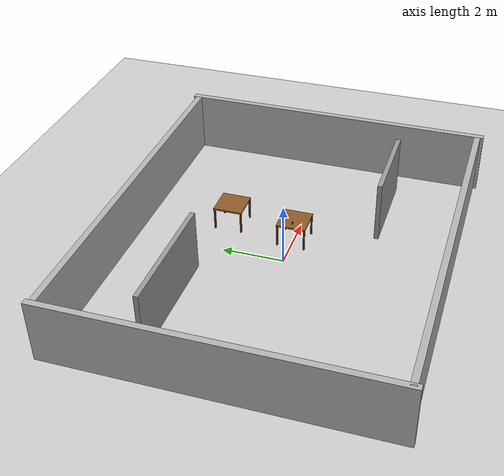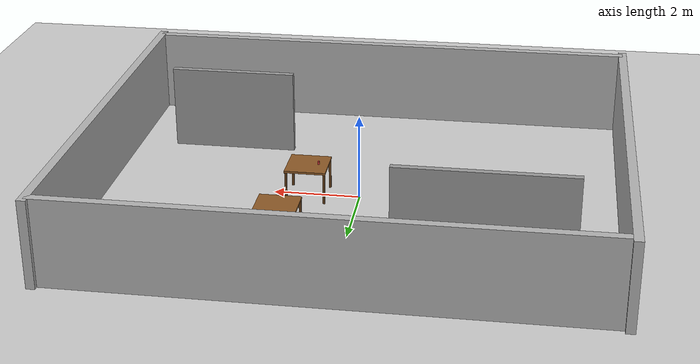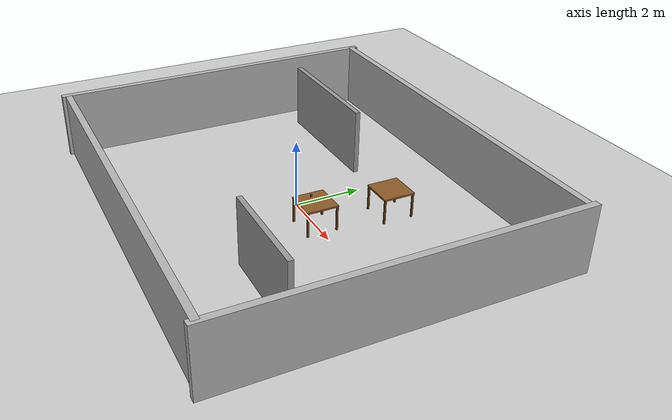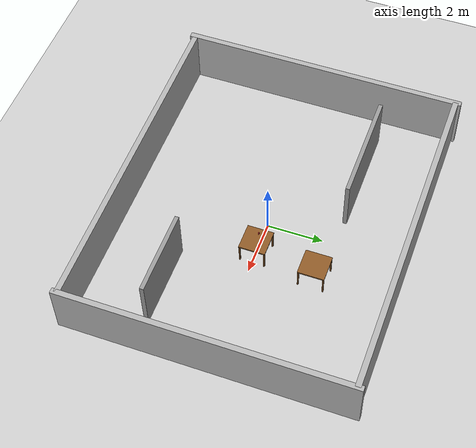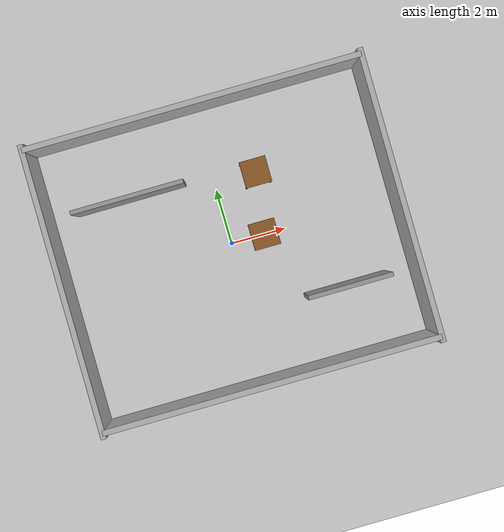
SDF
<?xml version="1.0"?>
<!-- MTC Test World: Simple room with custom tables and pickable object -->
<sdf version='1.7'>
  <world name='mtc_test'>
    <physics type='ode'>
      <max_step_size>0.02</max_step_size>
      <real_time_factor>1.0</real_time_factor>
      <real_time_update_rate>50</real_time_update_rate>
    </physics>
    <plugin name='ignition::gazebo::systems::Physics'
      filename='libignition-gazebo-physics-system.so' />
    <plugin name='ignition::gazebo::systems::UserCommands'
      filename='libignition-gazebo-user-commands-system.so' />
    <plugin name='ignition::gazebo::systems::SceneBroadcaster'
      filename='libignition-gazebo-scene-broadcaster-system.so' />
    <plugin name="ignition::gazebo::systems::Sensors"
      filename="libignition-gazebo-sensors-system.so">
      <render_engine>ogre2</render_engine>
    </plugin>
    <plugin name="ignition::gazebo::systems::Imu" filename="libignition-gazebo-imu-system.so" />

    <scene>
      <ambient>1 1 1 1</ambient>
      <background>0.3 0.7 0.9 1</background>
      <shadows>1</shadows>
      <grid>false</grid>
      <sky>
        <clouds>
          <speed>12</speed>
        </clouds>
      </sky>
    </scene>

    <gravity>0 0 -9.8</gravity>
    <magnetic_field>6e-06 2.3e-05 -4.2e-05</magnetic_field>
    <atmosphere type='adiabatic' />

    <!-- Sun from Fuel -->
    <include>
      <uri>https://fuel.gazebosim.org/1.0/OpenRobotics/models/Sun</uri>
    </include>

    <!-- Ground plane from Fuel -->
    <include>
      <uri>https://fuel.gazebosim.org/1.0/OpenRobotics/models/Ground Plane</uri>
    </include>

    <!-- Pick table: tabletop center z=0.75 (top at z=0.775), legs 0.725m tall (center z=0.3625) -->
    <model name="pick_table">
      <static>true</static>
      <pose>1.2 0 0 0 0 0</pose>
      <link name="tabletop">
        <pose>0 0 0.75 0 0 0</pose>
        <collision name="tabletop_collision">
          <geometry><box><size>0.95 0.95 0.05</size></box></geometry>
        </collision>
        <visual name="tabletop_visual">
          <geometry><box><size>0.95 0.95 0.05</size></box></geometry>
          <material>
            <ambient>0.55 0.35 0.15 1</ambient>
            <diffuse>0.55 0.35 0.15 1</diffuse>
          </material>
        </visual>
      </link>
      <link name="leg_fl">
        <pose>0.44 0.44 0.3625 0 0 0</pose>
        <collision name="c"><geometry><box><size>0.05 0.05 0.725</size></box></geometry></collision>
        <visual name="v"><geometry><box><size>0.05 0.05 0.725</size></box></geometry>
          <material><ambient>0.4 0.25 0.1 1</ambient><diffuse>0.4 0.25 0.1 1</diffuse></material>
        </visual>
      </link>
      <link name="leg_fr">
        <pose>0.44 -0.44 0.3625 0 0 0</pose>
        <collision name="c"><geometry><box><size>0.05 0.05 0.725</size></box></geometry></collision>
        <visual name="v"><geometry><box><size>0.05 0.05 0.725</size></box></geometry>
          <material><ambient>0.4 0.25 0.1 1</ambient><diffuse>0.4 0.25 0.1 1</diffuse></material>
        </visual>
      </link>
      <link name="leg_bl">
        <pose>-0.44 0.44 0.3625 0 0 0</pose>
        <collision name="c"><geometry><box><size>0.05 0.05 0.725</size></box></geometry></collision>
        <visual name="v"><geometry><box><size>0.05 0.05 0.725</size></box></geometry>
          <material><ambient>0.4 0.25 0.1 1</ambient><diffuse>0.4 0.25 0.1 1</diffuse></material>
        </visual>
      </link>
      <link name="leg_br">
        <pose>-0.44 -0.44 0.3625 0 0 0</pose>
        <collision name="c"><geometry><box><size>0.05 0.05 0.725</size></box></geometry></collision>
        <visual name="v"><geometry><box><size>0.05 0.05 0.725</size></box></geometry>
          <material><ambient>0.4 0.25 0.1 1</ambient><diffuse>0.4 0.25 0.1 1</diffuse></material>
        </visual>
      </link>
    </model>

    <!-- Place table: tabletop center z=0.75 (top at z=0.775), legs 0.725m tall (center z=0.3625) -->
    <model name="place_table">
      <static>true</static>
      <pose>1.5 2.2 0 0 0 0</pose>
      <link name="tabletop">
        <pose>0 0 0.75 0 0 0</pose>
        <collision name="tabletop_collision">
          <geometry><box><size>0.95 0.95 0.05</size></box></geometry>
        </collision>
        <visual name="tabletop_visual">
          <geometry><box><size>0.95 0.95 0.05</size></box></geometry>
          <material>
            <ambient>0.55 0.35 0.15 1</ambient>
            <diffuse>0.55 0.35 0.15 1</diffuse>
          </material>
        </visual>
      </link>
      <link name="leg_fl">
        <pose>0.44 0.44 0.3625 0 0 0</pose>
        <collision name="c"><geometry><box><size>0.05 0.05 0.725</size></box></geometry></collision>
        <visual name="v"><geometry><box><size>0.05 0.05 0.725</size></box></geometry>
          <material><ambient>0.4 0.25 0.1 1</ambient><diffuse>0.4 0.25 0.1 1</diffuse></material>
        </visual>
      </link>
      <link name="leg_fr">
        <pose>0.44 -0.44 0.3625 0 0 0</pose>
        <collision name="c"><geometry><box><size>0.05 0.05 0.725</size></box></geometry></collision>
        <visual name="v"><geometry><box><size>0.05 0.05 0.725</size></box></geometry>
          <material><ambient>0.4 0.25 0.1 1</ambient><diffuse>0.4 0.25 0.1 1</diffuse></material>
        </visual>
      </link>
      <link name="leg_bl">
        <pose>-0.44 0.44 0.3625 0 0 0</pose>
        <collision name="c"><geometry><box><size>0.05 0.05 0.725</size></box></geometry></collision>
        <visual name="v"><geometry><box><size>0.05 0.05 0.725</size></box></geometry>
          <material><ambient>0.4 0.25 0.1 1</ambient><diffuse>0.4 0.25 0.1 1</diffuse></material>
        </visual>
      </link>
      <link name="leg_br">
        <pose>-0.44 -0.44 0.3625 0 0 0</pose>
        <collision name="c"><geometry><box><size>0.05 0.05 0.725</size></box></geometry></collision>
        <visual name="v"><geometry><box><size>0.05 0.05 0.725</size></box></geometry>
          <material><ambient>0.4 0.25 0.1 1</ambient><diffuse>0.4 0.25 0.1 1</diffuse></material>
        </visual>
      </link>
    </model>

    <!-- Pickable object: Small box on the table (surface at z=1.0, box half-height=0.04) -->
    <model name="pick_object">
      <pose>0.95 0 0.815 0 0 0</pose>
      <link name="box_link">
        <inertial>
          <mass>0.1</mass>
          <inertia>
            <ixx>0.000017</ixx>
            <ixy>0</ixy>
            <ixz>0</ixz>
            <iyy>0.000017</iyy>
            <iyz>0</iyz>
            <izz>0.000017</izz>
          </inertia>
        </inertial>
        <collision name="box_collision">
          <geometry>
            <box>
              <size>0.04 0.04 0.08</size>
            </box>
          </geometry>
          <surface>
            <friction>
              <ode>
                <mu>1.0</mu>
                <mu2>1.0</mu2>
              </ode>
            </friction>
          </surface>
        </collision>
        <visual name="box_visual">
          <geometry>
            <box>
              <size>0.04 0.04 0.08</size>
            </box>
          </geometry>
          <material>
            <ambient>0.8 0.2 0.2 1</ambient>
            <diffuse>0.8 0.2 0.2 1</diffuse>
            <specular>0.5 0.5 0.5 1</specular>
          </material>
        </visual>
      </link>
    </model>

    <!-- Walls for navigation features (SLAM needs features to localize) -->
    <model name="wall_north">
      <static>true</static>
      <pose>0 5 1 0 0 0</pose>
      <link name="link">
        <collision name="collision">
          <geometry>
            <box>
              <size>12 0.2 2</size>
            </box>
          </geometry>
        </collision>
        <visual name="visual">
          <geometry>
            <box>
              <size>12 0.2 2</size>
            </box>
          </geometry>
          <material>
            <ambient>0.7 0.7 0.7 1</ambient>
            <diffuse>0.7 0.7 0.7 1</diffuse>
          </material>
        </visual>
      </link>
    </model>

    <model name="wall_south">
      <static>true</static>
      <pose>0 -5 1 0 0 0</pose>
      <link name="link">
        <collision name="collision">
          <geometry>
            <box>
              <size>12 0.2 2</size>
            </box>
          </geometry>
        </collision>
        <visual name="visual">
          <geometry>
            <box>
              <size>12 0.2 2</size>
            </box>
          </geometry>
          <material>
            <ambient>0.7 0.7 0.7 1</ambient>
            <diffuse>0.7 0.7 0.7 1</diffuse>
          </material>
        </visual>
      </link>
    </model>

    <model name="wall_east">
      <static>true</static>
      <pose>6 0 1 0 0 0</pose>
      <link name="link">
        <collision name="collision">
          <geometry>
            <box>
              <size>0.2 10.4 2</size>
            </box>
          </geometry>
        </collision>
        <visual name="visual">
          <geometry>
            <box>
              <size>0.2 10.4 2</size>
            </box>
          </geometry>
          <material>
            <ambient>0.7 0.7 0.7 1</ambient>
            <diffuse>0.7 0.7 0.7 1</diffuse>
          </material>
        </visual>
      </link>
    </model>

    <model name="wall_west">
      <static>true</static>
      <pose>-6 0 1 0 0 0</pose>
      <link name="link">
        <collision name="collision">
          <geometry>
            <box>
              <size>0.2 10.4 2</size>
            </box>
          </geometry>
        </collision>
        <visual name="visual">
          <geometry>
            <box>
              <size>0.2 10.4 2</size>
            </box>
          </geometry>
          <material>
            <ambient>0.7 0.7 0.7 1</ambient>
            <diffuse>0.7 0.7 0.7 1</diffuse>
          </material>
        </visual>
      </link>
    </model>

    <!-- Some internal walls for navigation features -->
    <model name="wall_internal_1">
      <static>true</static>
      <pose>-3 2.5 1 0 0 0</pose>
      <link name="link">
        <collision name="collision">
          <geometry>
            <box>
              <size>4 0.15 2</size>
            </box>
          </geometry>
        </collision>
        <visual name="visual">
          <geometry>
            <box>
              <size>4 0.15 2</size>
            </box>
          </geometry>
          <material>
            <ambient>0.6 0.6 0.6 1</ambient>
            <diffuse>0.6 0.6 0.6 1</diffuse>
          </material>
        </visual>
      </link>
    </model>

    <model name="wall_internal_2">
      <static>true</static>
      <pose>3.5 -2.5 1 0 0 0</pose>
      <link name="link">
        <collision name="collision">
          <geometry>
            <box>
              <size>3 0.15 2</size>
            </box>
          </geometry>
        </collision>
        <visual name="visual">
          <geometry>
            <box>
              <size>3 0.15 2</size>
            </box>
          </geometry>
          <material>
            <ambient>0.6 0.6 0.6 1</ambient>
            <diffuse>0.6 0.6 0.6 1</diffuse>
          </material>
        </visual>
      </link>
    </model>

  </world>
</sdf>
